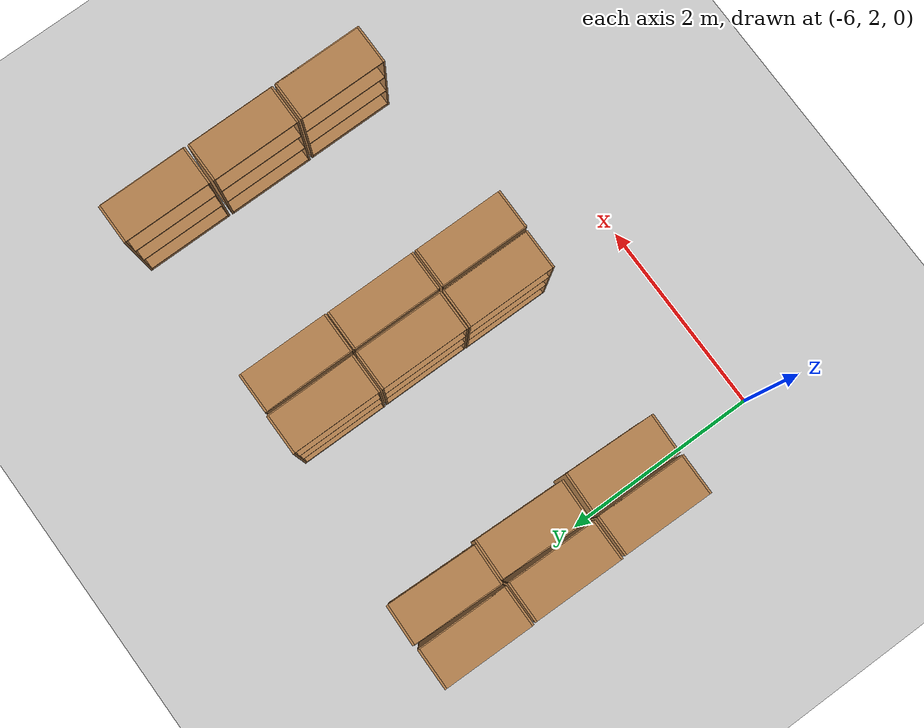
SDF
<sdf version="1.6">
 <world name="default">
  <model name="ground_plane">
   <static>1</static>
   <link name="link">
    <collision name="collision">
     <geometry><plane><normal>0 0 1</normal><size>100 100</size></plane></geometry>
     <surface>
      <contact><collide_bitmask>65535</collide_bitmask></contact>
      <friction><ode><mu>100</mu><mu2>50</mu2></ode></friction>
     </surface>
    </collision>
    <visual name="visual">
     <cast_shadows>0</cast_shadows>
     <geometry><plane><normal>0 0 1</normal><size>100 100</size></plane></geometry>
     <material>
      <script><uri>file://media/materials/scripts/gazebo.material</uri><name>Gazebo/Grey</name></script>
     </material>
    </visual>
   </link>
  </model>
  <model name="bookshelf_clone_3">
   <static>1</static>
   <link name="link">
    <inertial><mass>1</mass></inertial>
    <collision name="back">
     <pose>0 0.005 0.6 0 -0 0</pose>
     <geometry><box><size>0.9 0.01 1.2</size></box></geometry>
    </collision>
    <visual name="visual1">
     <pose>0 0.005 0.6 0 -0 0</pose>
     <geometry><box><size>0.9 0.01 1.2</size></box></geometry>
     <material>
      <script><uri>file://media/materials/scripts/gazebo.material</uri><name>Gazebo/Wood</name></script>
     </material>
    </visual>
    <collision name="left_side">
     <pose>0.45 -0.195 0.6 0 -0 0</pose>
     <geometry><box><size>0.02 0.4 1.2</size></box></geometry>
    </collision>
    <visual name="visual2">
     <pose>0.45 -0.195 0.6 0 -0 0</pose>
     <geometry><box><size>0.02 0.4 1.2</size></box></geometry>
     <material>
      <script><uri>file://media/materials/scripts/gazebo.material</uri><name>Gazebo/Wood</name></script>
     </material>
    </visual>
    <collision name="right_side">
     <pose>-0.45 -0.195 0.6 0 -0 0</pose>
     <geometry><box><size>0.02 0.4 1.2</size></box></geometry>
    </collision>
    <visual name="visual3">
     <pose>-0.45 -0.195 0.6 0 -0 0</pose>
     <geometry><box><size>0.02 0.4 1.2</size></box></geometry>
     <material>
      <script><uri>file://media/materials/scripts/gazebo.material</uri><name>Gazebo/Wood</name></script>
     </material>
    </visual>
    <collision name="bottom">
     <pose>0 -0.195 0.03 0 -0 0</pose>
     <geometry><box><size>0.88 0.4 0.06</size></box></geometry>
    </collision>
    <visual name="visual4">
     <pose>0 -0.195 0.03 0 -0 0</pose>
     <geometry><box><size>0.88 0.4 0.06</size></box></geometry>
     <material>
      <script><uri>file://media/materials/scripts/gazebo.material</uri><name>Gazebo/Wood</name></script>
     </material>
    </visual>
    <collision name="top">
     <pose>0 -0.195 1.19 0 -0 0</pose>
     <geometry><box><size>0.88 0.4 0.02</size></box></geometry>
    </collision>
    <visual name="visual5">
     <pose>0 -0.195 1.19 0 -0 0</pose>
     <geometry><box><size>0.88 0.4 0.02</size></box></geometry>
     <material>
      <script><uri>file://media/materials/scripts/gazebo.material</uri><name>Gazebo/Wood</name></script>
     </material>
    </visual>
    <collision name="low_shelf">
     <pose>0 -0.195 0.43 0 -0 0</pose>
     <geometry><box><size>0.88 0.4 0.02</size></box></geometry>
    </collision>
    <visual name="visual6">
     <pose>0 -0.195 0.43 0 -0 0</pose>
     <geometry><box><size>0.88 0.4 0.02</size></box></geometry>
     <material>
      <script><uri>file://media/materials/scripts/gazebo.material</uri><name>Gazebo/Wood</name></script>
     </material>
    </visual>
    <collision name="high_shelf">
     <pose>0 -0.195 0.8 0 -0 0</pose>
     <geometry><box><size>0.88 0.4 0.02</size></box></geometry>
    </collision>
    <visual name="visual7">
     <pose>0 -0.195 0.8 0 -0 0</pose>
     <geometry><box><size>0.88 0.4 0.02</size></box></geometry>
     <material>
      <script><uri>file://media/materials/scripts/gazebo.material</uri><name>Gazebo/Wood</name></script>
     </material>
    </visual>
   </link>
   <pose>-6.00479 3.44865 0 0 0 -1.58271</pose>
  </model>
  <model name="bookshelf_clone_4">
   <static>1</static>
   <link name="link">
    <inertial><mass>1</mass></inertial>
    <collision name="back">
     <pose>0 0.005 0.6 0 -0 0</pose>
     <geometry><box><size>0.9 0.01 1.2</size></box></geometry>
    </collision>
    <visual name="visual1">
     <pose>0 0.005 0.6 0 -0 0</pose>
     <geometry><box><size>0.9 0.01 1.2</size></box></geometry>
     <material>
      <script><uri>file://media/materials/scripts/gazebo.material</uri><name>Gazebo/Wood</name></script>
     </material>
    </visual>
    <collision name="left_side">
     <pose>0.45 -0.195 0.6 0 -0 0</pose>
     <geometry><box><size>0.02 0.4 1.2</size></box></geometry>
    </collision>
    <visual name="visual2">
     <pose>0.45 -0.195 0.6 0 -0 0</pose>
     <geometry><box><size>0.02 0.4 1.2</size></box></geometry>
     <material>
      <script><uri>file://media/materials/scripts/gazebo.material</uri><name>Gazebo/Wood</name></script>
     </material>
    </visual>
    <collision name="right_side">
     <pose>-0.45 -0.195 0.6 0 -0 0</pose>
     <geometry><box><size>0.02 0.4 1.2</size></box></geometry>
    </collision>
    <visual name="visual3">
     <pose>-0.45 -0.195 0.6 0 -0 0</pose>
     <geometry><box><size>0.02 0.4 1.2</size></box></geometry>
     <material>
      <script><uri>file://media/materials/scripts/gazebo.material</uri><name>Gazebo/Wood</name></script>
     </material>
    </visual>
    <collision name="bottom">
     <pose>0 -0.195 0.03 0 -0 0</pose>
     <geometry><box><size>0.88 0.4 0.06</size></box></geometry>
    </collision>
    <visual name="visual4">
     <pose>0 -0.195 0.03 0 -0 0</pose>
     <geometry><box><size>0.88 0.4 0.06</size></box></geometry>
     <material>
      <script><uri>file://media/materials/scripts/gazebo.material</uri><name>Gazebo/Wood</name></script>
     </material>
    </visual>
    <collision name="top">
     <pose>0 -0.195 1.19 0 -0 0</pose>
     <geometry><box><size>0.88 0.4 0.02</size></box></geometry>
    </collision>
    <visual name="visual5">
     <pose>0 -0.195 1.19 0 -0 0</pose>
     <geometry><box><size>0.88 0.4 0.02</size></box></geometry>
     <material>
      <script><uri>file://media/materials/scripts/gazebo.material</uri><name>Gazebo/Wood</name></script>
     </material>
    </visual>
    <collision name="low_shelf">
     <pose>0 -0.195 0.43 0 -0 0</pose>
     <geometry><box><size>0.88 0.4 0.02</size></box></geometry>
    </collision>
    <visual name="visual6">
     <pose>0 -0.195 0.43 0 -0 0</pose>
     <geometry><box><size>0.88 0.4 0.02</size></box></geometry>
     <material>
      <script><uri>file://media/materials/scripts/gazebo.material</uri><name>Gazebo/Wood</name></script>
     </material>
    </visual>
    <collision name="high_shelf">
     <pose>0 -0.195 0.8 0 -0 0</pose>
     <geometry><box><size>0.88 0.4 0.02</size></box></geometry>
    </collision>
    <visual name="visual7">
     <pose>0 -0.195 0.8 0 -0 0</pose>
     <geometry><box><size>0.88 0.4 0.02</size></box></geometry>
     <material>
      <script><uri>file://media/materials/scripts/gazebo.material</uri><name>Gazebo/Wood</name></script>
     </material>
    </visual>
   </link>
   <pose>-6.00189 4.39097 0 0 0 -1.58271</pose>
  </model>
  <model name="bookshelf_clone_5">
   <static>1</static>
   <link name="link">
    <inertial><mass>1</mass></inertial>
    <collision name="back">
     <pose>0 0.005 0.6 0 -0 0</pose>
     <geometry><box><size>0.9 0.01 1.2</size></box></geometry>
    </collision>
    <visual name="visual1">
     <pose>0 0.005 0.6 0 -0 0</pose>
     <geometry><box><size>0.9 0.01 1.2</size></box></geometry>
     <material>
      <script><uri>file://media/materials/scripts/gazebo.material</uri><name>Gazebo/Wood</name></script>
     </material>
    </visual>
    <collision name="left_side">
     <pose>0.45 -0.195 0.6 0 -0 0</pose>
     <geometry><box><size>0.02 0.4 1.2</size></box></geometry>
    </collision>
    <visual name="visual2">
     <pose>0.45 -0.195 0.6 0 -0 0</pose>
     <geometry><box><size>0.02 0.4 1.2</size></box></geometry>
     <material>
      <script><uri>file://media/materials/scripts/gazebo.material</uri><name>Gazebo/Wood</name></script>
     </material>
    </visual>
    <collision name="right_side">
     <pose>-0.45 -0.195 0.6 0 -0 0</pose>
     <geometry><box><size>0.02 0.4 1.2</size></box></geometry>
    </collision>
    <visual name="visual3">
     <pose>-0.45 -0.195 0.6 0 -0 0</pose>
     <geometry><box><size>0.02 0.4 1.2</size></box></geometry>
     <material>
      <script><uri>file://media/materials/scripts/gazebo.material</uri><name>Gazebo/Wood</name></script>
     </material>
    </visual>
    <collision name="bottom">
     <pose>0 -0.195 0.03 0 -0 0</pose>
     <geometry><box><size>0.88 0.4 0.06</size></box></geometry>
    </collision>
    <visual name="visual4">
     <pose>0 -0.195 0.03 0 -0 0</pose>
     <geometry><box><size>0.88 0.4 0.06</size></box></geometry>
     <material>
      <script><uri>file://media/materials/scripts/gazebo.material</uri><name>Gazebo/Wood</name></script>
     </material>
    </visual>
    <collision name="top">
     <pose>0 -0.195 1.19 0 -0 0</pose>
     <geometry><box><size>0.88 0.4 0.02</size></box></geometry>
    </collision>
    <visual name="visual5">
     <pose>0 -0.195 1.19 0 -0 0</pose>
     <geometry><box><size>0.88 0.4 0.02</size></box></geometry>
     <material>
      <script><uri>file://media/materials/scripts/gazebo.material</uri><name>Gazebo/Wood</name></script>
     </material>
    </visual>
    <collision name="low_shelf">
     <pose>0 -0.195 0.43 0 -0 0</pose>
     <geometry><box><size>0.88 0.4 0.02</size></box></geometry>
    </collision>
    <visual name="visual6">
     <pose>0 -0.195 0.43 0 -0 0</pose>
     <geometry><box><size>0.88 0.4 0.02</size></box></geometry>
     <material>
      <script><uri>file://media/materials/scripts/gazebo.material</uri><name>Gazebo/Wood</name></script>
     </material>
    </visual>
    <collision name="high_shelf">
     <pose>0 -0.195 0.8 0 -0 0</pose>
     <geometry><box><size>0.88 0.4 0.02</size></box></geometry>
    </collision>
    <visual name="visual7">
     <pose>0 -0.195 0.8 0 -0 0</pose>
     <geometry><box><size>0.88 0.4 0.02</size></box></geometry>
     <material>
      <script><uri>file://media/materials/scripts/gazebo.material</uri><name>Gazebo/Wood</name></script>
     </material>
    </visual>
   </link>
   <pose>-5.99964 5.32626 0 0 0 -1.58271</pose>
  </model>
  <model name="bookshelf_clone_11">
   <static>1</static>
   <link name="link">
    <inertial><mass>1</mass></inertial>
    <collision name="back">
     <pose>0 0.005 0.6 0 -0 0</pose>
     <geometry><box><size>0.9 0.01 1.2</size></box></geometry>
    </collision>
    <visual name="visual1">
     <pose>0 0.005 0.6 0 -0 0</pose>
     <geometry><box><size>0.9 0.01 1.2</size></box></geometry>
     <material>
      <script><uri>file://media/materials/scripts/gazebo.material</uri><name>Gazebo/Wood</name></script>
     </material>
    </visual>
    <collision name="left_side">
     <pose>0.45 -0.195 0.6 0 -0 0</pose>
     <geometry><box><size>0.02 0.4 1.2</size></box></geometry>
    </collision>
    <visual name="visual2">
     <pose>0.45 -0.195 0.6 0 -0 0</pose>
     <geometry><box><size>0.02 0.4 1.2</size></box></geometry>
     <material>
      <script><uri>file://media/materials/scripts/gazebo.material</uri><name>Gazebo/Wood</name></script>
     </material>
    </visual>
    <collision name="right_side">
     <pose>-0.45 -0.195 0.6 0 -0 0</pose>
     <geometry><box><size>0.02 0.4 1.2</size></box></geometry>
    </collision>
    <visual name="visual3">
     <pose>-0.45 -0.195 0.6 0 -0 0</pose>
     <geometry><box><size>0.02 0.4 1.2</size></box></geometry>
     <material>
      <script><uri>file://media/materials/scripts/gazebo.material</uri><name>Gazebo/Wood</name></script>
     </material>
    </visual>
    <collision name="bottom">
     <pose>0 -0.195 0.03 0 -0 0</pose>
     <geometry><box><size>0.88 0.4 0.06</size></box></geometry>
    </collision>
    <visual name="visual4">
     <pose>0 -0.195 0.03 0 -0 0</pose>
     <geometry><box><size>0.88 0.4 0.06</size></box></geometry>
     <material>
      <script><uri>file://media/materials/scripts/gazebo.material</uri><name>Gazebo/Wood</name></script>
     </material>
    </visual>
    <collision name="top">
     <pose>0 -0.195 1.19 0 -0 0</pose>
     <geometry><box><size>0.88 0.4 0.02</size></box></geometry>
    </collision>
    <visual name="visual5">
     <pose>0 -0.195 1.19 0 -0 0</pose>
     <geometry><box><size>0.88 0.4 0.02</size></box></geometry>
     <material>
      <script><uri>file://media/materials/scripts/gazebo.material</uri><name>Gazebo/Wood</name></script>
     </material>
    </visual>
    <collision name="low_shelf">
     <pose>0 -0.195 0.43 0 -0 0</pose>
     <geometry><box><size>0.88 0.4 0.02</size></box></geometry>
    </collision>
    <visual name="visual6">
     <pose>0 -0.195 0.43 0 -0 0</pose>
     <geometry><box><size>0.88 0.4 0.02</size></box></geometry>
     <material>
      <script><uri>file://media/materials/scripts/gazebo.material</uri><name>Gazebo/Wood</name></script>
     </material>
    </visual>
    <collision name="high_shelf">
     <pose>0 -0.195 0.8 0 -0 0</pose>
     <geometry><box><size>0.88 0.4 0.02</size></box></geometry>
    </collision>
    <visual name="visual7">
     <pose>0 -0.195 0.8 0 -0 0</pose>
     <geometry><box><size>0.88 0.4 0.02</size></box></geometry>
     <material>
      <script><uri>file://media/materials/scripts/gazebo.material</uri><name>Gazebo/Wood</name></script>
     </material>
    </visual>
   </link>
   <pose>-1.27551 3.45535 0 0 0 -1.57178</pose>
  </model>
  <model name="bookshelf_clone_12">
   <static>1</static>
   <link name="link">
    <inertial><mass>1</mass></inertial>
    <collision name="back">
     <pose>0 0.005 0.6 0 -0 0</pose>
     <geometry><box><size>0.9 0.01 1.2</size></box></geometry>
    </collision>
    <visual name="visual1">
     <pose>0 0.005 0.6 0 -0 0</pose>
     <geometry><box><size>0.9 0.01 1.2</size></box></geometry>
     <material>
      <script><uri>file://media/materials/scripts/gazebo.material</uri><name>Gazebo/Wood</name></script>
     </material>
    </visual>
    <collision name="left_side">
     <pose>0.45 -0.195 0.6 0 -0 0</pose>
     <geometry><box><size>0.02 0.4 1.2</size></box></geometry>
    </collision>
    <visual name="visual2">
     <pose>0.45 -0.195 0.6 0 -0 0</pose>
     <geometry><box><size>0.02 0.4 1.2</size></box></geometry>
     <material>
      <script><uri>file://media/materials/scripts/gazebo.material</uri><name>Gazebo/Wood</name></script>
     </material>
    </visual>
    <collision name="right_side">
     <pose>-0.45 -0.195 0.6 0 -0 0</pose>
     <geometry><box><size>0.02 0.4 1.2</size></box></geometry>
    </collision>
    <visual name="visual3">
     <pose>-0.45 -0.195 0.6 0 -0 0</pose>
     <geometry><box><size>0.02 0.4 1.2</size></box></geometry>
     <material>
      <script><uri>file://media/materials/scripts/gazebo.material</uri><name>Gazebo/Wood</name></script>
     </material>
    </visual>
    <collision name="bottom">
     <pose>0 -0.195 0.03 0 -0 0</pose>
     <geometry><box><size>0.88 0.4 0.06</size></box></geometry>
    </collision>
    <visual name="visual4">
     <pose>0 -0.195 0.03 0 -0 0</pose>
     <geometry><box><size>0.88 0.4 0.06</size></box></geometry>
     <material>
      <script><uri>file://media/materials/scripts/gazebo.material</uri><name>Gazebo/Wood</name></script>
     </material>
    </visual>
    <collision name="top">
     <pose>0 -0.195 1.19 0 -0 0</pose>
     <geometry><box><size>0.88 0.4 0.02</size></box></geometry>
    </collision>
    <visual name="visual5">
     <pose>0 -0.195 1.19 0 -0 0</pose>
     <geometry><box><size>0.88 0.4 0.02</size></box></geometry>
     <material>
      <script><uri>file://media/materials/scripts/gazebo.material</uri><name>Gazebo/Wood</name></script>
     </material>
    </visual>
    <collision name="low_shelf">
     <pose>0 -0.195 0.43 0 -0 0</pose>
     <geometry><box><size>0.88 0.4 0.02</size></box></geometry>
    </collision>
    <visual name="visual6">
     <pose>0 -0.195 0.43 0 -0 0</pose>
     <geometry><box><size>0.88 0.4 0.02</size></box></geometry>
     <material>
      <script><uri>file://media/materials/scripts/gazebo.material</uri><name>Gazebo/Wood</name></script>
     </material>
    </visual>
    <collision name="high_shelf">
     <pose>0 -0.195 0.8 0 -0 0</pose>
     <geometry><box><size>0.88 0.4 0.02</size></box></geometry>
    </collision>
    <visual name="visual7">
     <pose>0 -0.195 0.8 0 -0 0</pose>
     <geometry><box><size>0.88 0.4 0.02</size></box></geometry>
     <material>
      <script><uri>file://media/materials/scripts/gazebo.material</uri><name>Gazebo/Wood</name></script>
     </material>
    </visual>
   </link>
   <pose>-1.27904 4.39574 0 0 0 -1.57178</pose>
  </model>
  <model name="bookshelf_clone_13">
   <static>1</static>
   <link name="link">
    <inertial><mass>1</mass></inertial>
    <collision name="back">
     <pose>0 0.005 0.6 0 -0 0</pose>
     <geometry><box><size>0.9 0.01 1.2</size></box></geometry>
    </collision>
    <visual name="visual1">
     <pose>0 0.005 0.6 0 -0 0</pose>
     <geometry><box><size>0.9 0.01 1.2</size></box></geometry>
     <material>
      <script><uri>file://media/materials/scripts/gazebo.material</uri><name>Gazebo/Wood</name></script>
     </material>
    </visual>
    <collision name="left_side">
     <pose>0.45 -0.195 0.6 0 -0 0</pose>
     <geometry><box><size>0.02 0.4 1.2</size></box></geometry>
    </collision>
    <visual name="visual2">
     <pose>0.45 -0.195 0.6 0 -0 0</pose>
     <geometry><box><size>0.02 0.4 1.2</size></box></geometry>
     <material>
      <script><uri>file://media/materials/scripts/gazebo.material</uri><name>Gazebo/Wood</name></script>
     </material>
    </visual>
    <collision name="right_side">
     <pose>-0.45 -0.195 0.6 0 -0 0</pose>
     <geometry><box><size>0.02 0.4 1.2</size></box></geometry>
    </collision>
    <visual name="visual3">
     <pose>-0.45 -0.195 0.6 0 -0 0</pose>
     <geometry><box><size>0.02 0.4 1.2</size></box></geometry>
     <material>
      <script><uri>file://media/materials/scripts/gazebo.material</uri><name>Gazebo/Wood</name></script>
     </material>
    </visual>
    <collision name="bottom">
     <pose>0 -0.195 0.03 0 -0 0</pose>
     <geometry><box><size>0.88 0.4 0.06</size></box></geometry>
    </collision>
    <visual name="visual4">
     <pose>0 -0.195 0.03 0 -0 0</pose>
     <geometry><box><size>0.88 0.4 0.06</size></box></geometry>
     <material>
      <script><uri>file://media/materials/scripts/gazebo.material</uri><name>Gazebo/Wood</name></script>
     </material>
    </visual>
    <collision name="top">
     <pose>0 -0.195 1.19 0 -0 0</pose>
     <geometry><box><size>0.88 0.4 0.02</size></box></geometry>
    </collision>
    <visual name="visual5">
     <pose>0 -0.195 1.19 0 -0 0</pose>
     <geometry><box><size>0.88 0.4 0.02</size></box></geometry>
     <material>
      <script><uri>file://media/materials/scripts/gazebo.material</uri><name>Gazebo/Wood</name></script>
     </material>
    </visual>
    <collision name="low_shelf">
     <pose>0 -0.195 0.43 0 -0 0</pose>
     <geometry><box><size>0.88 0.4 0.02</size></box></geometry>
    </collision>
    <visual name="visual6">
     <pose>0 -0.195 0.43 0 -0 0</pose>
     <geometry><box><size>0.88 0.4 0.02</size></box></geometry>
     <material>
      <script><uri>file://media/materials/scripts/gazebo.material</uri><name>Gazebo/Wood</name></script>
     </material>
    </visual>
    <collision name="high_shelf">
     <pose>0 -0.195 0.8 0 -0 0</pose>
     <geometry><box><size>0.88 0.4 0.02</size></box></geometry>
    </collision>
    <visual name="visual7">
     <pose>0 -0.195 0.8 0 -0 0</pose>
     <geometry><box><size>0.88 0.4 0.02</size></box></geometry>
     <material>
      <script><uri>file://media/materials/scripts/gazebo.material</uri><name>Gazebo/Wood</name></script>
     </material>
    </visual>
   </link>
   <pose>-1.27497 5.34012 0 0 0 -1.57178</pose>
  </model>
  <model name="bookshelf_clone_19">
   <static>1</static>
   <link name="link">
    <inertial><mass>1</mass></inertial>
    <collision name="back">
     <pose>0 0.005 0.6 0 -0 0</pose>
     <geometry><box><size>0.9 0.01 1.2</size></box></geometry>
    </collision>
    <visual name="visual1">
     <pose>0 0.005 0.6 0 -0 0</pose>
     <geometry><box><size>0.9 0.01 1.2</size></box></geometry>
     <material>
      <script><uri>file://media/materials/scripts/gazebo.material</uri><name>Gazebo/Wood</name></script>
     </material>
    </visual>
    <collision name="left_side">
     <pose>0.45 -0.195 0.6 0 -0 0</pose>
     <geometry><box><size>0.02 0.4 1.2</size></box></geometry>
    </collision>
    <visual name="visual2">
     <pose>0.45 -0.195 0.6 0 -0 0</pose>
     <geometry><box><size>0.02 0.4 1.2</size></box></geometry>
     <material>
      <script><uri>file://media/materials/scripts/gazebo.material</uri><name>Gazebo/Wood</name></script>
     </material>
    </visual>
    <collision name="right_side">
     <pose>-0.45 -0.195 0.6 0 -0 0</pose>
     <geometry><box><size>0.02 0.4 1.2</size></box></geometry>
    </collision>
    <visual name="visual3">
     <pose>-0.45 -0.195 0.6 0 -0 0</pose>
     <geometry><box><size>0.02 0.4 1.2</size></box></geometry>
     <material>
      <script><uri>file://media/materials/scripts/gazebo.material</uri><name>Gazebo/Wood</name></script>
     </material>
    </visual>
    <collision name="bottom">
     <pose>0 -0.195 0.03 0 -0 0</pose>
     <geometry><box><size>0.88 0.4 0.06</size></box></geometry>
    </collision>
    <visual name="visual4">
     <pose>0 -0.195 0.03 0 -0 0</pose>
     <geometry><box><size>0.88 0.4 0.06</size></box></geometry>
     <material>
      <script><uri>file://media/materials/scripts/gazebo.material</uri><name>Gazebo/Wood</name></script>
     </material>
    </visual>
    <collision name="top">
     <pose>0 -0.195 1.19 0 -0 0</pose>
     <geometry><box><size>0.88 0.4 0.02</size></box></geometry>
    </collision>
    <visual name="visual5">
     <pose>0 -0.195 1.19 0 -0 0</pose>
     <geometry><box><size>0.88 0.4 0.02</size></box></geometry>
     <material>
      <script><uri>file://media/materials/scripts/gazebo.material</uri><name>Gazebo/Wood</name></script>
     </material>
    </visual>
    <collision name="low_shelf">
     <pose>0 -0.195 0.43 0 -0 0</pose>
     <geometry><box><size>0.88 0.4 0.02</size></box></geometry>
    </collision>
    <visual name="visual6">
     <pose>0 -0.195 0.43 0 -0 0</pose>
     <geometry><box><size>0.88 0.4 0.02</size></box></geometry>
     <material>
      <script><uri>file://media/materials/scripts/gazebo.material</uri><name>Gazebo/Wood</name></script>
     </material>
    </visual>
    <collision name="high_shelf">
     <pose>0 -0.195 0.8 0 -0 0</pose>
     <geometry><box><size>0.88 0.4 0.02</size></box></geometry>
    </collision>
    <visual name="visual7">
     <pose>0 -0.195 0.8 0 -0 0</pose>
     <geometry><box><size>0.88 0.4 0.02</size></box></geometry>
     <material>
      <script><uri>file://media/materials/scripts/gazebo.material</uri><name>Gazebo/Wood</name></script>
     </material>
    </visual>
   </link>
   <pose>-5.95463 3.45879 0 0 -0 1.53734</pose>
  </model>
  <model name="bookshelf_clone_20">
   <static>1</static>
   <link name="link">
    <inertial><mass>1</mass></inertial>
    <collision name="back">
     <pose>0 0.005 0.6 0 -0 0</pose>
     <geometry><box><size>0.9 0.01 1.2</size></box></geometry>
    </collision>
    <visual name="visual1">
     <pose>0 0.005 0.6 0 -0 0</pose>
     <geometry><box><size>0.9 0.01 1.2</size></box></geometry>
     <material>
      <script><uri>file://media/materials/scripts/gazebo.material</uri><name>Gazebo/Wood</name></script>
     </material>
    </visual>
    <collision name="left_side">
     <pose>0.45 -0.195 0.6 0 -0 0</pose>
     <geometry><box><size>0.02 0.4 1.2</size></box></geometry>
    </collision>
    <visual name="visual2">
     <pose>0.45 -0.195 0.6 0 -0 0</pose>
     <geometry><box><size>0.02 0.4 1.2</size></box></geometry>
     <material>
      <script><uri>file://media/materials/scripts/gazebo.material</uri><name>Gazebo/Wood</name></script>
     </material>
    </visual>
    <collision name="right_side">
     <pose>-0.45 -0.195 0.6 0 -0 0</pose>
     <geometry><box><size>0.02 0.4 1.2</size></box></geometry>
    </collision>
    <visual name="visual3">
     <pose>-0.45 -0.195 0.6 0 -0 0</pose>
     <geometry><box><size>0.02 0.4 1.2</size></box></geometry>
     <material>
      <script><uri>file://media/materials/scripts/gazebo.material</uri><name>Gazebo/Wood</name></script>
     </material>
    </visual>
    <collision name="bottom">
     <pose>0 -0.195 0.03 0 -0 0</pose>
     <geometry><box><size>0.88 0.4 0.06</size></box></geometry>
    </collision>
    <visual name="visual4">
     <pose>0 -0.195 0.03 0 -0 0</pose>
     <geometry><box><size>0.88 0.4 0.06</size></box></geometry>
     <material>
      <script><uri>file://media/materials/scripts/gazebo.material</uri><name>Gazebo/Wood</name></script>
     </material>
    </visual>
    <collision name="top">
     <pose>0 -0.195 1.19 0 -0 0</pose>
     <geometry><box><size>0.88 0.4 0.02</size></box></geometry>
    </collision>
    <visual name="visual5">
     <pose>0 -0.195 1.19 0 -0 0</pose>
     <geometry><box><size>0.88 0.4 0.02</size></box></geometry>
     <material>
      <script><uri>file://media/materials/scripts/gazebo.material</uri><name>Gazebo/Wood</name></script>
     </material>
    </visual>
    <collision name="low_shelf">
     <pose>0 -0.195 0.43 0 -0 0</pose>
     <geometry><box><size>0.88 0.4 0.02</size></box></geometry>
    </collision>
    <visual name="visual6">
     <pose>0 -0.195 0.43 0 -0 0</pose>
     <geometry><box><size>0.88 0.4 0.02</size></box></geometry>
     <material>
      <script><uri>file://media/materials/scripts/gazebo.material</uri><name>Gazebo/Wood</name></script>
     </material>
    </visual>
    <collision name="high_shelf">
     <pose>0 -0.195 0.8 0 -0 0</pose>
     <geometry><box><size>0.88 0.4 0.02</size></box></geometry>
    </collision>
    <visual name="visual7">
     <pose>0 -0.195 0.8 0 -0 0</pose>
     <geometry><box><size>0.88 0.4 0.02</size></box></geometry>
     <material>
      <script><uri>file://media/materials/scripts/gazebo.material</uri><name>Gazebo/Wood</name></script>
     </material>
    </visual>
   </link>
   <pose>-5.95051 4.4173 0 0 -0 1.53734</pose>
  </model>
  <model name="bookshelf_clone_21">
   <static>1</static>
   <link name="link">
    <inertial><mass>1</mass></inertial>
    <collision name="back">
     <pose>0 0.005 0.6 0 -0 0</pose>
     <geometry><box><size>0.9 0.01 1.2</size></box></geometry>
    </collision>
    <visual name="visual1">
     <pose>0 0.005 0.6 0 -0 0</pose>
     <geometry><box><size>0.9 0.01 1.2</size></box></geometry>
     <material>
      <script><uri>file://media/materials/scripts/gazebo.material</uri><name>Gazebo/Wood</name></script>
     </material>
    </visual>
    <collision name="left_side">
     <pose>0.45 -0.195 0.6 0 -0 0</pose>
     <geometry><box><size>0.02 0.4 1.2</size></box></geometry>
    </collision>
    <visual name="visual2">
     <pose>0.45 -0.195 0.6 0 -0 0</pose>
     <geometry><box><size>0.02 0.4 1.2</size></box></geometry>
     <material>
      <script><uri>file://media/materials/scripts/gazebo.material</uri><name>Gazebo/Wood</name></script>
     </material>
    </visual>
    <collision name="right_side">
     <pose>-0.45 -0.195 0.6 0 -0 0</pose>
     <geometry><box><size>0.02 0.4 1.2</size></box></geometry>
    </collision>
    <visual name="visual3">
     <pose>-0.45 -0.195 0.6 0 -0 0</pose>
     <geometry><box><size>0.02 0.4 1.2</size></box></geometry>
     <material>
      <script><uri>file://media/materials/scripts/gazebo.material</uri><name>Gazebo/Wood</name></script>
     </material>
    </visual>
    <collision name="bottom">
     <pose>0 -0.195 0.03 0 -0 0</pose>
     <geometry><box><size>0.88 0.4 0.06</size></box></geometry>
    </collision>
    <visual name="visual4">
     <pose>0 -0.195 0.03 0 -0 0</pose>
     <geometry><box><size>0.88 0.4 0.06</size></box></geometry>
     <material>
      <script><uri>file://media/materials/scripts/gazebo.material</uri><name>Gazebo/Wood</name></script>
     </material>
    </visual>
    <collision name="top">
     <pose>0 -0.195 1.19 0 -0 0</pose>
     <geometry><box><size>0.88 0.4 0.02</size></box></geometry>
    </collision>
    <visual name="visual5">
     <pose>0 -0.195 1.19 0 -0 0</pose>
     <geometry><box><size>0.88 0.4 0.02</size></box></geometry>
     <material>
      <script><uri>file://media/materials/scripts/gazebo.material</uri><name>Gazebo/Wood</name></script>
     </material>
    </visual>
    <collision name="low_shelf">
     <pose>0 -0.195 0.43 0 -0 0</pose>
     <geometry><box><size>0.88 0.4 0.02</size></box></geometry>
    </collision>
    <visual name="visual6">
     <pose>0 -0.195 0.43 0 -0 0</pose>
     <geometry><box><size>0.88 0.4 0.02</size></box></geometry>
     <material>
      <script><uri>file://media/materials/scripts/gazebo.material</uri><name>Gazebo/Wood</name></script>
     </material>
    </visual>
    <collision name="high_shelf">
     <pose>0 -0.195 0.8 0 -0 0</pose>
     <geometry><box><size>0.88 0.4 0.02</size></box></geometry>
    </collision>
    <visual name="visual7">
     <pose>0 -0.195 0.8 0 -0 0</pose>
     <geometry><box><size>0.88 0.4 0.02</size></box></geometry>
     <material>
      <script><uri>file://media/materials/scripts/gazebo.material</uri><name>Gazebo/Wood</name></script>
     </material>
    </visual>
   </link>
   <pose>-5.9493 5.33824 0 0 -0 1.53734</pose>
  </model>
  <model name="bookshelf_clone_27">
   <static>1</static>
   <link name="link">
    <inertial><mass>1</mass></inertial>
    <collision name="back">
     <pose>0 0.005 0.6 0 -0 0</pose>
     <geometry><box><size>0.9 0.01 1.2</size></box></geometry>
    </collision>
    <visual name="visual1">
     <pose>0 0.005 0.6 0 -0 0</pose>
     <geometry><box><size>0.9 0.01 1.2</size></box></geometry>
     <material>
      <script><uri>file://media/materials/scripts/gazebo.material</uri><name>Gazebo/Wood</name></script>
     </material>
    </visual>
    <collision name="left_side">
     <pose>0.45 -0.195 0.6 0 -0 0</pose>
     <geometry><box><size>0.02 0.4 1.2</size></box></geometry>
    </collision>
    <visual name="visual2">
     <pose>0.45 -0.195 0.6 0 -0 0</pose>
     <geometry><box><size>0.02 0.4 1.2</size></box></geometry>
     <material>
      <script><uri>file://media/materials/scripts/gazebo.material</uri><name>Gazebo/Wood</name></script>
     </material>
    </visual>
    <collision name="right_side">
     <pose>-0.45 -0.195 0.6 0 -0 0</pose>
     <geometry><box><size>0.02 0.4 1.2</size></box></geometry>
    </collision>
    <visual name="visual3">
     <pose>-0.45 -0.195 0.6 0 -0 0</pose>
     <geometry><box><size>0.02 0.4 1.2</size></box></geometry>
     <material>
      <script><uri>file://media/materials/scripts/gazebo.material</uri><name>Gazebo/Wood</name></script>
     </material>
    </visual>
    <collision name="bottom">
     <pose>0 -0.195 0.03 0 -0 0</pose>
     <geometry><box><size>0.88 0.4 0.06</size></box></geometry>
    </collision>
    <visual name="visual4">
     <pose>0 -0.195 0.03 0 -0 0</pose>
     <geometry><box><size>0.88 0.4 0.06</size></box></geometry>
     <material>
      <script><uri>file://media/materials/scripts/gazebo.material</uri><name>Gazebo/Wood</name></script>
     </material>
    </visual>
    <collision name="top">
     <pose>0 -0.195 1.19 0 -0 0</pose>
     <geometry><box><size>0.88 0.4 0.02</size></box></geometry>
    </collision>
    <visual name="visual5">
     <pose>0 -0.195 1.19 0 -0 0</pose>
     <geometry><box><size>0.88 0.4 0.02</size></box></geometry>
     <material>
      <script><uri>file://media/materials/scripts/gazebo.material</uri><name>Gazebo/Wood</name></script>
     </material>
    </visual>
    <collision name="low_shelf">
     <pose>0 -0.195 0.43 0 -0 0</pose>
     <geometry><box><size>0.88 0.4 0.02</size></box></geometry>
    </collision>
    <visual name="visual6">
     <pose>0 -0.195 0.43 0 -0 0</pose>
     <geometry><box><size>0.88 0.4 0.02</size></box></geometry>
     <material>
      <script><uri>file://media/materials/scripts/gazebo.material</uri><name>Gazebo/Wood</name></script>
     </material>
    </visual>
    <collision name="high_shelf">
     <pose>0 -0.195 0.8 0 -0 0</pose>
     <geometry><box><size>0.88 0.4 0.02</size></box></geometry>
    </collision>
    <visual name="visual7">
     <pose>0 -0.195 0.8 0 -0 0</pose>
     <geometry><box><size>0.88 0.4 0.02</size></box></geometry>
     <material>
      <script><uri>file://media/materials/scripts/gazebo.material</uri><name>Gazebo/Wood</name></script>
     </material>
    </visual>
   </link>
   <pose>-3.61474 3.33622 0 0 -0 1.56785</pose>
  </model>
  <model name="bookshelf_clone_28">
   <static>1</static>
   <link name="link">
    <inertial><mass>1</mass></inertial>
    <collision name="back">
     <pose>0 0.005 0.6 0 -0 0</pose>
     <geometry><box><size>0.9 0.01 1.2</size></box></geometry>
    </collision>
    <visual name="visual1">
     <pose>0 0.005 0.6 0 -0 0</pose>
     <geometry><box><size>0.9 0.01 1.2</size></box></geometry>
     <material>
      <script><uri>file://media/materials/scripts/gazebo.material</uri><name>Gazebo/Wood</name></script>
     </material>
    </visual>
    <collision name="left_side">
     <pose>0.45 -0.195 0.6 0 -0 0</pose>
     <geometry><box><size>0.02 0.4 1.2</size></box></geometry>
    </collision>
    <visual name="visual2">
     <pose>0.45 -0.195 0.6 0 -0 0</pose>
     <geometry><box><size>0.02 0.4 1.2</size></box></geometry>
     <material>
      <script><uri>file://media/materials/scripts/gazebo.material</uri><name>Gazebo/Wood</name></script>
     </material>
    </visual>
    <collision name="right_side">
     <pose>-0.45 -0.195 0.6 0 -0 0</pose>
     <geometry><box><size>0.02 0.4 1.2</size></box></geometry>
    </collision>
    <visual name="visual3">
     <pose>-0.45 -0.195 0.6 0 -0 0</pose>
     <geometry><box><size>0.02 0.4 1.2</size></box></geometry>
     <material>
      <script><uri>file://media/materials/scripts/gazebo.material</uri><name>Gazebo/Wood</name></script>
     </material>
    </visual>
    <collision name="bottom">
     <pose>0 -0.195 0.03 0 -0 0</pose>
     <geometry><box><size>0.88 0.4 0.06</size></box></geometry>
    </collision>
    <visual name="visual4">
     <pose>0 -0.195 0.03 0 -0 0</pose>
     <geometry><box><size>0.88 0.4 0.06</size></box></geometry>
     <material>
      <script><uri>file://media/materials/scripts/gazebo.material</uri><name>Gazebo/Wood</name></script>
     </material>
    </visual>
    <collision name="top">
     <pose>0 -0.195 1.19 0 -0 0</pose>
     <geometry><box><size>0.88 0.4 0.02</size></box></geometry>
    </collision>
    <visual name="visual5">
     <pose>0 -0.195 1.19 0 -0 0</pose>
     <geometry><box><size>0.88 0.4 0.02</size></box></geometry>
     <material>
      <script><uri>file://media/materials/scripts/gazebo.material</uri><name>Gazebo/Wood</name></script>
     </material>
    </visual>
    <collision name="low_shelf">
     <pose>0 -0.195 0.43 0 -0 0</pose>
     <geometry><box><size>0.88 0.4 0.02</size></box></geometry>
    </collision>
    <visual name="visual6">
     <pose>0 -0.195 0.43 0 -0 0</pose>
     <geometry><box><size>0.88 0.4 0.02</size></box></geometry>
     <material>
      <script><uri>file://media/materials/scripts/gazebo.material</uri><name>Gazebo/Wood</name></script>
     </material>
    </visual>
    <collision name="high_shelf">
     <pose>0 -0.195 0.8 0 -0 0</pose>
     <geometry><box><size>0.88 0.4 0.02</size></box></geometry>
    </collision>
    <visual name="visual7">
     <pose>0 -0.195 0.8 0 -0 0</pose>
     <geometry><box><size>0.88 0.4 0.02</size></box></geometry>
     <material>
      <script><uri>file://media/materials/scripts/gazebo.material</uri><name>Gazebo/Wood</name></script>
     </material>
    </visual>
   </link>
   <pose>-3.61187 4.27456 0 0 -0 1.56785</pose>
  </model>
  <model name="bookshelf_clone_29">
   <static>1</static>
   <link name="link">
    <inertial><mass>1</mass></inertial>
    <collision name="back">
     <pose>0 0.005 0.6 0 -0 0</pose>
     <geometry><box><size>0.9 0.01 1.2</size></box></geometry>
    </collision>
    <visual name="visual1">
     <pose>0 0.005 0.6 0 -0 0</pose>
     <geometry><box><size>0.9 0.01 1.2</size></box></geometry>
     <material>
      <script><uri>file://media/materials/scripts/gazebo.material</uri><name>Gazebo/Wood</name></script>
     </material>
    </visual>
    <collision name="left_side">
     <pose>0.45 -0.195 0.6 0 -0 0</pose>
     <geometry><box><size>0.02 0.4 1.2</size></box></geometry>
    </collision>
    <visual name="visual2">
     <pose>0.45 -0.195 0.6 0 -0 0</pose>
     <geometry><box><size>0.02 0.4 1.2</size></box></geometry>
     <material>
      <script><uri>file://media/materials/scripts/gazebo.material</uri><name>Gazebo/Wood</name></script>
     </material>
    </visual>
    <collision name="right_side">
     <pose>-0.45 -0.195 0.6 0 -0 0</pose>
     <geometry><box><size>0.02 0.4 1.2</size></box></geometry>
    </collision>
    <visual name="visual3">
     <pose>-0.45 -0.195 0.6 0 -0 0</pose>
     <geometry><box><size>0.02 0.4 1.2</size></box></geometry>
     <material>
      <script><uri>file://media/materials/scripts/gazebo.material</uri><name>Gazebo/Wood</name></script>
     </material>
    </visual>
    <collision name="bottom">
     <pose>0 -0.195 0.03 0 -0 0</pose>
     <geometry><box><size>0.88 0.4 0.06</size></box></geometry>
    </collision>
    <visual name="visual4">
     <pose>0 -0.195 0.03 0 -0 0</pose>
     <geometry><box><size>0.88 0.4 0.06</size></box></geometry>
     <material>
      <script><uri>file://media/materials/scripts/gazebo.material</uri><name>Gazebo/Wood</name></script>
     </material>
    </visual>
    <collision name="top">
     <pose>0 -0.195 1.19 0 -0 0</pose>
     <geometry><box><size>0.88 0.4 0.02</size></box></geometry>
    </collision>
    <visual name="visual5">
     <pose>0 -0.195 1.19 0 -0 0</pose>
     <geometry><box><size>0.88 0.4 0.02</size></box></geometry>
     <material>
      <script><uri>file://media/materials/scripts/gazebo.material</uri><name>Gazebo/Wood</name></script>
     </material>
    </visual>
    <collision name="low_shelf">
     <pose>0 -0.195 0.43 0 -0 0</pose>
     <geometry><box><size>0.88 0.4 0.02</size></box></geometry>
    </collision>
    <visual name="visual6">
     <pose>0 -0.195 0.43 0 -0 0</pose>
     <geometry><box><size>0.88 0.4 0.02</size></box></geometry>
     <material>
      <script><uri>file://media/materials/scripts/gazebo.material</uri><name>Gazebo/Wood</name></script>
     </material>
    </visual>
    <collision name="high_shelf">
     <pose>0 -0.195 0.8 0 -0 0</pose>
     <geometry><box><size>0.88 0.4 0.02</size></box></geometry>
    </collision>
    <visual name="visual7">
     <pose>0 -0.195 0.8 0 -0 0</pose>
     <geometry><box><size>0.88 0.4 0.02</size></box></geometry>
     <material>
      <script><uri>file://media/materials/scripts/gazebo.material</uri><name>Gazebo/Wood</name></script>
     </material>
    </visual>
   </link>
   <pose>-3.60627 5.2037 0 0 -0 1.56785</pose>
  </model>
  <model name="bookshelf_clone_35">
   <static>1</static>
   <link name="link">
    <inertial><mass>1</mass></inertial>
    <collision name="back">
     <pose>0 0.005 0.6 0 -0 0</pose>
     <geometry><box><size>0.9 0.01 1.2</size></box></geometry>
    </collision>
    <visual name="visual1">
     <pose>0 0.005 0.6 0 -0 0</pose>
     <geometry><box><size>0.9 0.01 1.2</size></box></geometry>
     <material>
      <script><uri>file://media/materials/scripts/gazebo.material</uri><name>Gazebo/Wood</name></script>
     </material>
    </visual>
    <collision name="left_side">
     <pose>0.45 -0.195 0.6 0 -0 0</pose>
     <geometry><box><size>0.02 0.4 1.2</size></box></geometry>
    </collision>
    <visual name="visual2">
     <pose>0.45 -0.195 0.6 0 -0 0</pose>
     <geometry><box><size>0.02 0.4 1.2</size></box></geometry>
     <material>
      <script><uri>file://media/materials/scripts/gazebo.material</uri><name>Gazebo/Wood</name></script>
     </material>
    </visual>
    <collision name="right_side">
     <pose>-0.45 -0.195 0.6 0 -0 0</pose>
     <geometry><box><size>0.02 0.4 1.2</size></box></geometry>
    </collision>
    <visual name="visual3">
     <pose>-0.45 -0.195 0.6 0 -0 0</pose>
     <geometry><box><size>0.02 0.4 1.2</size></box></geometry>
     <material>
      <script><uri>file://media/materials/scripts/gazebo.material</uri><name>Gazebo/Wood</name></script>
     </material>
    </visual>
    <collision name="bottom">
     <pose>0 -0.195 0.03 0 -0 0</pose>
     <geometry><box><size>0.88 0.4 0.06</size></box></geometry>
    </collision>
    <visual name="visual4">
     <pose>0 -0.195 0.03 0 -0 0</pose>
     <geometry><box><size>0.88 0.4 0.06</size></box></geometry>
     <material>
      <script><uri>file://media/materials/scripts/gazebo.material</uri><name>Gazebo/Wood</name></script>
     </material>
    </visual>
    <collision name="top">
     <pose>0 -0.195 1.19 0 -0 0</pose>
     <geometry><box><size>0.88 0.4 0.02</size></box></geometry>
    </collision>
    <visual name="visual5">
     <pose>0 -0.195 1.19 0 -0 0</pose>
     <geometry><box><size>0.88 0.4 0.02</size></box></geometry>
     <material>
      <script><uri>file://media/materials/scripts/gazebo.material</uri><name>Gazebo/Wood</name></script>
     </material>
    </visual>
    <collision name="low_shelf">
     <pose>0 -0.195 0.43 0 -0 0</pose>
     <geometry><box><size>0.88 0.4 0.02</size></box></geometry>
    </collision>
    <visual name="visual6">
     <pose>0 -0.195 0.43 0 -0 0</pose>
     <geometry><box><size>0.88 0.4 0.02</size></box></geometry>
     <material>
      <script><uri>file://media/materials/scripts/gazebo.material</uri><name>Gazebo/Wood</name></script>
     </material>
    </visual>
    <collision name="high_shelf">
     <pose>0 -0.195 0.8 0 -0 0</pose>
     <geometry><box><size>0.88 0.4 0.02</size></box></geometry>
    </collision>
    <visual name="visual7">
     <pose>0 -0.195 0.8 0 -0 0</pose>
     <geometry><box><size>0.88 0.4 0.02</size></box></geometry>
     <material>
      <script><uri>file://media/materials/scripts/gazebo.material</uri><name>Gazebo/Wood</name></script>
     </material>
    </visual>
   </link>
   <pose>-3.654 3.35512 0 0 0 -1.57438</pose>
  </model>
  <model name="bookshelf_clone_36">
   <static>1</static>
   <link name="link">
    <inertial><mass>1</mass></inertial>
    <collision name="back">
     <pose>0 0.005 0.6 0 -0 0</pose>
     <geometry><box><size>0.9 0.01 1.2</size></box></geometry>
    </collision>
    <visual name="visual1">
     <pose>0 0.005 0.6 0 -0 0</pose>
     <geometry><box><size>0.9 0.01 1.2</size></box></geometry>
     <material>
      <script><uri>file://media/materials/scripts/gazebo.material</uri><name>Gazebo/Wood</name></script>
     </material>
    </visual>
    <collision name="left_side">
     <pose>0.45 -0.195 0.6 0 -0 0</pose>
     <geometry><box><size>0.02 0.4 1.2</size></box></geometry>
    </collision>
    <visual name="visual2">
     <pose>0.45 -0.195 0.6 0 -0 0</pose>
     <geometry><box><size>0.02 0.4 1.2</size></box></geometry>
     <material>
      <script><uri>file://media/materials/scripts/gazebo.material</uri><name>Gazebo/Wood</name></script>
     </material>
    </visual>
    <collision name="right_side">
     <pose>-0.45 -0.195 0.6 0 -0 0</pose>
     <geometry><box><size>0.02 0.4 1.2</size></box></geometry>
    </collision>
    <visual name="visual3">
     <pose>-0.45 -0.195 0.6 0 -0 0</pose>
     <geometry><box><size>0.02 0.4 1.2</size></box></geometry>
     <material>
      <script><uri>file://media/materials/scripts/gazebo.material</uri><name>Gazebo/Wood</name></script>
     </material>
    </visual>
    <collision name="bottom">
     <pose>0 -0.195 0.03 0 -0 0</pose>
     <geometry><box><size>0.88 0.4 0.06</size></box></geometry>
    </collision>
    <visual name="visual4">
     <pose>0 -0.195 0.03 0 -0 0</pose>
     <geometry><box><size>0.88 0.4 0.06</size></box></geometry>
     <material>
      <script><uri>file://media/materials/scripts/gazebo.material</uri><name>Gazebo/Wood</name></script>
     </material>
    </visual>
    <collision name="top">
     <pose>0 -0.195 1.19 0 -0 0</pose>
     <geometry><box><size>0.88 0.4 0.02</size></box></geometry>
    </collision>
    <visual name="visual5">
     <pose>0 -0.195 1.19 0 -0 0</pose>
     <geometry><box><size>0.88 0.4 0.02</size></box></geometry>
     <material>
      <script><uri>file://media/materials/scripts/gazebo.material</uri><name>Gazebo/Wood</name></script>
     </material>
    </visual>
    <collision name="low_shelf">
     <pose>0 -0.195 0.43 0 -0 0</pose>
     <geometry><box><size>0.88 0.4 0.02</size></box></geometry>
    </collision>
    <visual name="visual6">
     <pose>0 -0.195 0.43 0 -0 0</pose>
     <geometry><box><size>0.88 0.4 0.02</size></box></geometry>
     <material>
      <script><uri>file://media/materials/scripts/gazebo.material</uri><name>Gazebo/Wood</name></script>
     </material>
    </visual>
    <collision name="high_shelf">
     <pose>0 -0.195 0.8 0 -0 0</pose>
     <geometry><box><size>0.88 0.4 0.02</size></box></geometry>
    </collision>
    <visual name="visual7">
     <pose>0 -0.195 0.8 0 -0 0</pose>
     <geometry><box><size>0.88 0.4 0.02</size></box></geometry>
     <material>
      <script><uri>file://media/materials/scripts/gazebo.material</uri><name>Gazebo/Wood</name></script>
     </material>
    </visual>
   </link>
   <pose>-3.64793 4.28078 0 0 0 -1.57438</pose>
  </model>
  <model name="bookshelf_clone_37">
   <static>1</static>
   <link name="link">
    <inertial><mass>1</mass></inertial>
    <collision name="back">
     <pose>0 0.005 0.6 0 -0 0</pose>
     <geometry><box><size>0.9 0.01 1.2</size></box></geometry>
    </collision>
    <visual name="visual1">
     <pose>0 0.005 0.6 0 -0 0</pose>
     <geometry><box><size>0.9 0.01 1.2</size></box></geometry>
     <material>
      <script><uri>file://media/materials/scripts/gazebo.material</uri><name>Gazebo/Wood</name></script>
     </material>
    </visual>
    <collision name="left_side">
     <pose>0.45 -0.195 0.6 0 -0 0</pose>
     <geometry><box><size>0.02 0.4 1.2</size></box></geometry>
    </collision>
    <visual name="visual2">
     <pose>0.45 -0.195 0.6 0 -0 0</pose>
     <geometry><box><size>0.02 0.4 1.2</size></box></geometry>
     <material>
      <script><uri>file://media/materials/scripts/gazebo.material</uri><name>Gazebo/Wood</name></script>
     </material>
    </visual>
    <collision name="right_side">
     <pose>-0.45 -0.195 0.6 0 -0 0</pose>
     <geometry><box><size>0.02 0.4 1.2</size></box></geometry>
    </collision>
    <visual name="visual3">
     <pose>-0.45 -0.195 0.6 0 -0 0</pose>
     <geometry><box><size>0.02 0.4 1.2</size></box></geometry>
     <material>
      <script><uri>file://media/materials/scripts/gazebo.material</uri><name>Gazebo/Wood</name></script>
     </material>
    </visual>
    <collision name="bottom">
     <pose>0 -0.195 0.03 0 -0 0</pose>
     <geometry><box><size>0.88 0.4 0.06</size></box></geometry>
    </collision>
    <visual name="visual4">
     <pose>0 -0.195 0.03 0 -0 0</pose>
     <geometry><box><size>0.88 0.4 0.06</size></box></geometry>
     <material>
      <script><uri>file://media/materials/scripts/gazebo.material</uri><name>Gazebo/Wood</name></script>
     </material>
    </visual>
    <collision name="top">
     <pose>0 -0.195 1.19 0 -0 0</pose>
     <geometry><box><size>0.88 0.4 0.02</size></box></geometry>
    </collision>
    <visual name="visual5">
     <pose>0 -0.195 1.19 0 -0 0</pose>
     <geometry><box><size>0.88 0.4 0.02</size></box></geometry>
     <material>
      <script><uri>file://media/materials/scripts/gazebo.material</uri><name>Gazebo/Wood</name></script>
     </material>
    </visual>
    <collision name="low_shelf">
     <pose>0 -0.195 0.43 0 -0 0</pose>
     <geometry><box><size>0.88 0.4 0.02</size></box></geometry>
    </collision>
    <visual name="visual6">
     <pose>0 -0.195 0.43 0 -0 0</pose>
     <geometry><box><size>0.88 0.4 0.02</size></box></geometry>
     <material>
      <script><uri>file://media/materials/scripts/gazebo.material</uri><name>Gazebo/Wood</name></script>
     </material>
    </visual>
    <collision name="high_shelf">
     <pose>0 -0.195 0.8 0 -0 0</pose>
     <geometry><box><size>0.88 0.4 0.02</size></box></geometry>
    </collision>
    <visual name="visual7">
     <pose>0 -0.195 0.8 0 -0 0</pose>
     <geometry><box><size>0.88 0.4 0.02</size></box></geometry>
     <material>
      <script><uri>file://media/materials/scripts/gazebo.material</uri><name>Gazebo/Wood</name></script>
     </material>
    </visual>
   </link>
   <pose>-3.6476 5.21572 0 0 0 -1.57438</pose>
  </model>
 </world>
</sdf>
